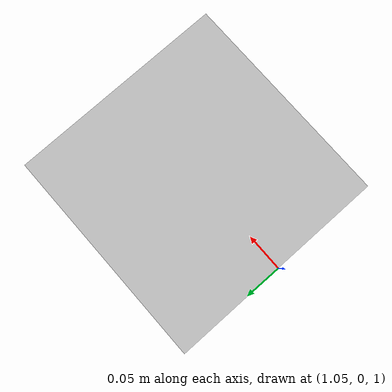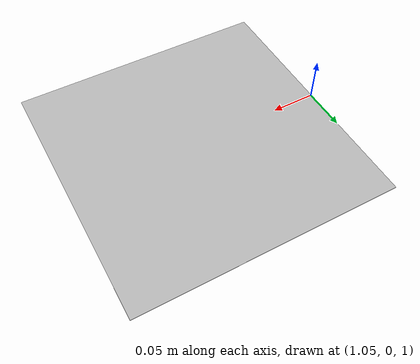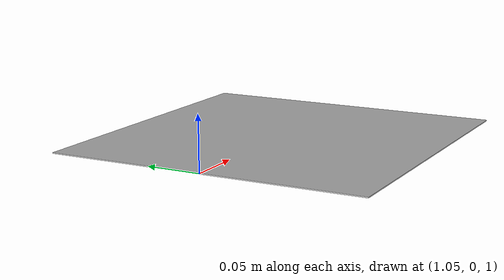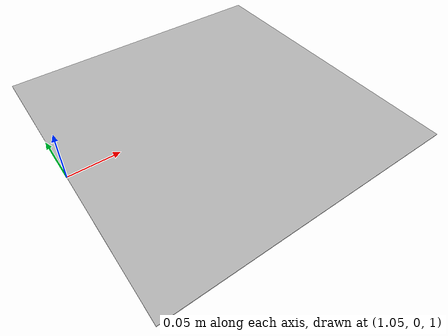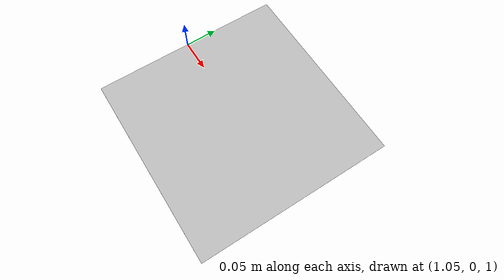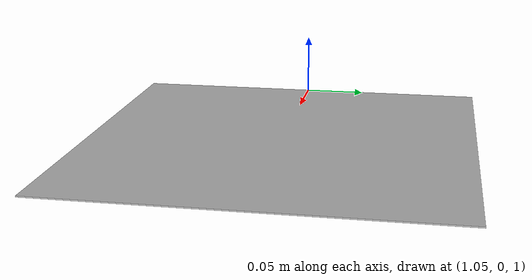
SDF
<?xml version="1.0" ?>
<sdf version="1.6">
  <world name="calibration_world">
    <!-- A global light source -->
    <include>
      <uri>model://sun</uri>
    </include>
    <!-- A ground plane -->
    <include>
      <uri>model://ground_plane</uri>
    </include>
    <include>
	    <uri>model://circlegrid</uri>
	    <name>circlegrid</name>
        <pose>1.2 0.0 1 0 0 0</pose>
    </include>
  </world>
</sdf>

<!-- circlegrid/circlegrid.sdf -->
<sdf version="1.6">
  <model name="circlegrid">
    <pose>0 0 0.5 0 0 0</pose>
    <static>true</static>
    <link name="link">
      <inertial>
        <mass>1.0</mass>
        <inertia> <!-- inertias are tricky to compute -->
          <!-- http://gazebosim.org/tutorials?tut=inertia&cat=build_robot -->
          <ixx>0.083</ixx>       <!-- for a box: ixx = 0.083 * mass * (y*y + z*z) -->
          <ixy>0.0</ixy>         <!-- for a box: ixy = 0 -->
          <ixz>0.0</ixz>         <!-- for a box: ixz = 0 -->
          <iyy>0.083</iyy>       <!-- for a box: iyy = 0.083 * mass * (x*x + z*z) -->
          <iyz>0.0</iyz>         <!-- for a box: iyz = 0 -->
          <izz>0.083</izz>       <!-- for a box: izz = 0.083 * mass * (x*x + y*y) -->
        </inertia>
      </inertial>
      <collision name="collision">
        <geometry>
          <box>
            <size>0.300 0.300 0.001</size>
          </box>
        </geometry>
      </collision>
      <visual name="visual">
        <geometry>
          <box>
            <size>0.300 0.300 0.001</size>
          </box>
        </geometry>
        <material>
           <script>
            <uri>model://circlegrid/materials/scripts</uri>
            <uri>model://circlegrid/materials/textures</uri>
             <name>circlegrid</name>
           </script>
        </material>
      </visual>
    </link>
  </model>
</sdf>
